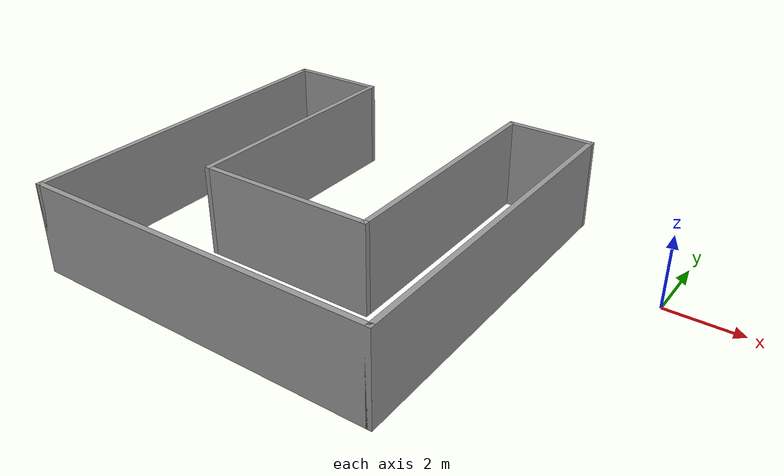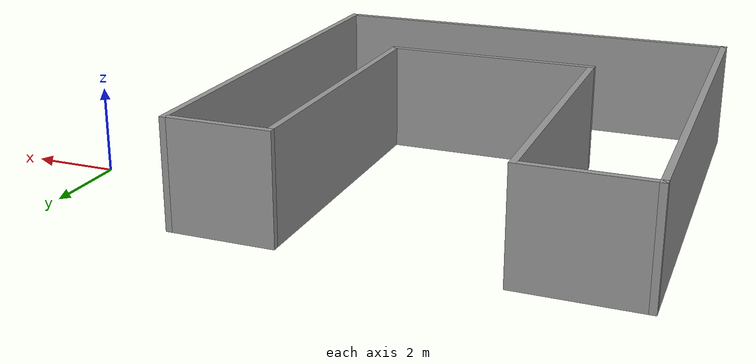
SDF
<?xml version='1.0'?>
<sdf version='1.7'>
  <model name='mybuilding'>
    <pose>-6.57827 -2.34455 0 0 -0 0</pose>
    <link name='Wall_10'>
      <collision name='Wall_10_Collision'>
        <geometry>
          <box>
            <size>5 0.15 2.5</size>
          </box>
        </geometry>
        <pose>0 0 1.25 0 -0 0</pose>
      </collision>
      <visual name='Wall_10_Visual'>
        <pose>0 0 1.25 0 -0 0</pose>
        <geometry>
          <box>
            <size>5 0.15 2.5</size>
          </box>
        </geometry>
        <material>
          <script>
            <uri>file://media/materials/scripts/gazebo.material</uri>
            <name>Gazebo/Grey</name>
          </script>
          <ambient>1 1 1 1</ambient>
        </material>
        <meta>
          <layer>0</layer>
        </meta>
      </visual>
      <pose>-1.42827 -1.925 0 0 -0 3.14159</pose>
    </link>
    <link name='Wall_11'>
      <collision name='Wall_11_Collision'>
        <geometry>
          <box>
            <size>7 0.15 2.5</size>
          </box>
        </geometry>
        <pose>0 0 1.25 0 -0 0</pose>
      </collision>
      <visual name='Wall_11_Visual'>
        <pose>0 0 1.25 0 -0 0</pose>
        <geometry>
          <box>
            <size>7 0.15 2.5</size>
          </box>
        </geometry>
        <material>
          <script>
            <uri>file://media/materials/scripts/gazebo.material</uri>
            <name>Gazebo/Grey</name>
          </script>
          <ambient>1 1 1 1</ambient>
        </material>
        <meta>
          <layer>0</layer>
        </meta>
      </visual>
      <pose>-3.85327 1.5 0 0 -0 1.5708</pose>
    </link>
    <link name='Wall_12'>
      <collision name='Wall_12_Collision'>
        <geometry>
          <box>
            <size>2.8 0.15 2.5</size>
          </box>
        </geometry>
        <pose>0 0 1.25 0 -0 0</pose>
      </collision>
      <visual name='Wall_12_Visual'>
        <pose>0 0 1.25 0 -0 0</pose>
        <geometry>
          <box>
            <size>2.8 0.15 2.5</size>
          </box>
        </geometry>
        <material>
          <script>
            <uri>file://media/materials/scripts/gazebo.material</uri>
            <name>Gazebo/Grey</name>
          </script>
          <ambient>1 1 1 1</ambient>
        </material>
        <meta>
          <layer>0</layer>
        </meta>
      </visual>
      <pose>-5.17827 4.925 0 0 -0 -3.14159</pose>
    </link>
    <link name='Wall_5'>
      <collision name='Wall_5_Collision'>
        <geometry>
          <box>
            <size>10 0.15 2.5</size>
          </box>
        </geometry>
        <pose>0 0 1.25 0 -0 0</pose>
      </collision>
      <visual name='Wall_5_Visual'>
        <pose>0 0 1.25 0 -0 0</pose>
        <geometry>
          <box>
            <size>10 0.15 2.5</size>
          </box>
        </geometry>
        <material>
          <script>
            <uri>file://media/materials/scripts/gazebo.material</uri>
            <name>Gazebo/Grey</name>
          </script>
          <ambient>1 1 1 1</ambient>
        </material>
        <meta>
          <layer>0</layer>
        </meta>
      </visual>
      <pose>-6.50327 0 0 0 -0 -1.5708</pose>
    </link>
    <link name='Wall_6'>
      <collision name='Wall_6_Collision'>
        <geometry>
          <box>
            <size>10 0.15 2.5</size>
          </box>
        </geometry>
        <pose>0 0 1.25 0 -0 0</pose>
      </collision>
      <visual name='Wall_6_Visual'>
        <pose>0 0 1.25 0 -0 0</pose>
        <geometry>
          <box>
            <size>10 0.15 2.5</size>
          </box>
        </geometry>
        <material>
          <script>
            <uri>file://media/materials/scripts/gazebo.material</uri>
            <name>Gazebo/Grey</name>
          </script>
          <ambient>1 1 1 1</ambient>
        </material>
        <meta>
          <layer>0</layer>
        </meta>
      </visual>
      <pose>-1.57827 -4.925 0 0 -0 0</pose>
    </link>
    <link name='Wall_7'>
      <collision name='Wall_7_Collision'>
        <geometry>
          <box>
            <size>10 0.15 2.5</size>
          </box>
        </geometry>
        <pose>0 0 1.25 0 -0 0</pose>
      </collision>
      <visual name='Wall_7_Visual'>
        <pose>0 0 1.25 0 -0 0</pose>
        <geometry>
          <box>
            <size>10 0.15 2.5</size>
          </box>
        </geometry>
        <material>
          <script>
            <uri>file://media/materials/scripts/gazebo.material</uri>
            <name>Gazebo/Grey</name>
          </script>
          <ambient>1 1 1 1</ambient>
        </material>
        <meta>
          <layer>0</layer>
        </meta>
      </visual>
      <pose>3.34673 0 0 0 -0 1.5708</pose>
    </link>
    <link name='Wall_8'>
      <collision name='Wall_8_Collision'>
        <geometry>
          <box>
            <size>2.5 0.15 2.5</size>
          </box>
        </geometry>
        <pose>0 0 1.25 0 -0 0</pose>
      </collision>
      <visual name='Wall_8_Visual'>
        <pose>0 0 1.25 0 -0 0</pose>
        <geometry>
          <box>
            <size>2.5 0.15 2.5</size>
          </box>
        </geometry>
        <material>
          <script>
            <uri>file://media/materials/scripts/gazebo.material</uri>
            <name>Gazebo/Grey</name>
          </script>
          <ambient>1 1 1 1</ambient>
        </material>
        <meta>
          <layer>0</layer>
        </meta>
      </visual>
      <pose>2.17173 4.925 0 0 -0 3.14159</pose>
    </link>
    <link name='Wall_9'>
      <collision name='Wall_9_Collision'>
        <geometry>
          <box>
            <size>7 0.15 2.5</size>
          </box>
        </geometry>
        <pose>0 0 1.25 0 -0 0</pose>
      </collision>
      <visual name='Wall_9_Visual'>
        <pose>0 0 1.25 0 -0 0</pose>
        <geometry>
          <box>
            <size>7 0.15 2.5</size>
          </box>
        </geometry>
        <material>
          <script>
            <uri>file://media/materials/scripts/gazebo.material</uri>
            <name>Gazebo/Grey</name>
          </script>
          <ambient>1 1 1 1</ambient>
        </material>
        <meta>
          <layer>0</layer>
        </meta>
      </visual>
      <pose>0.996733 1.5 0 0 -0 -1.5708</pose>
    </link>
    <static>1</static>
  </model>
</sdf>
